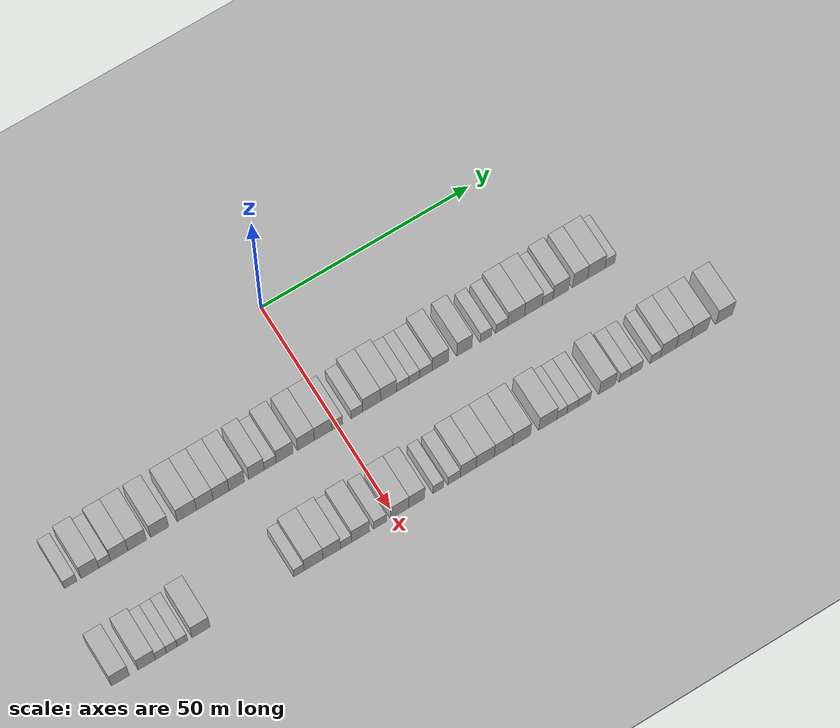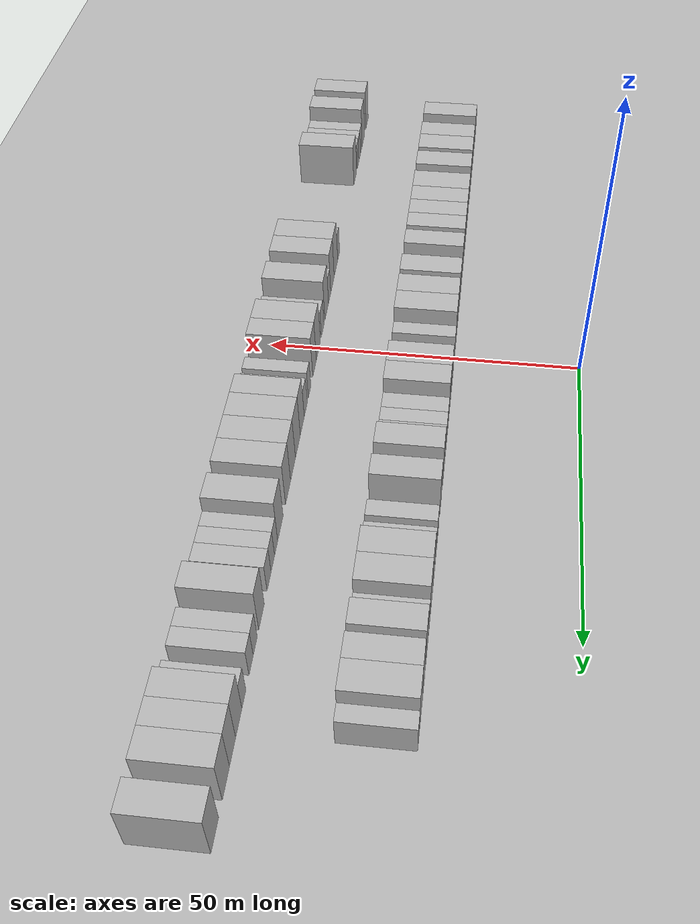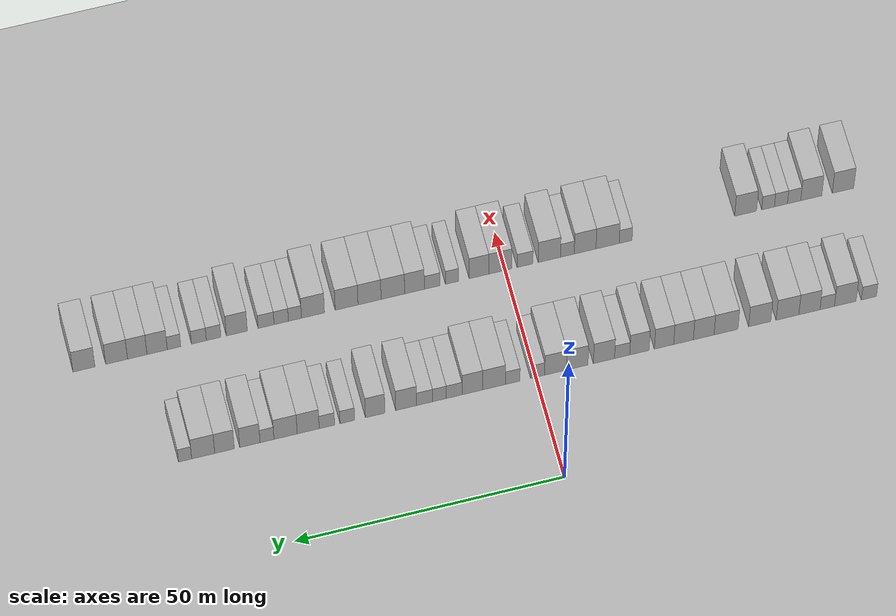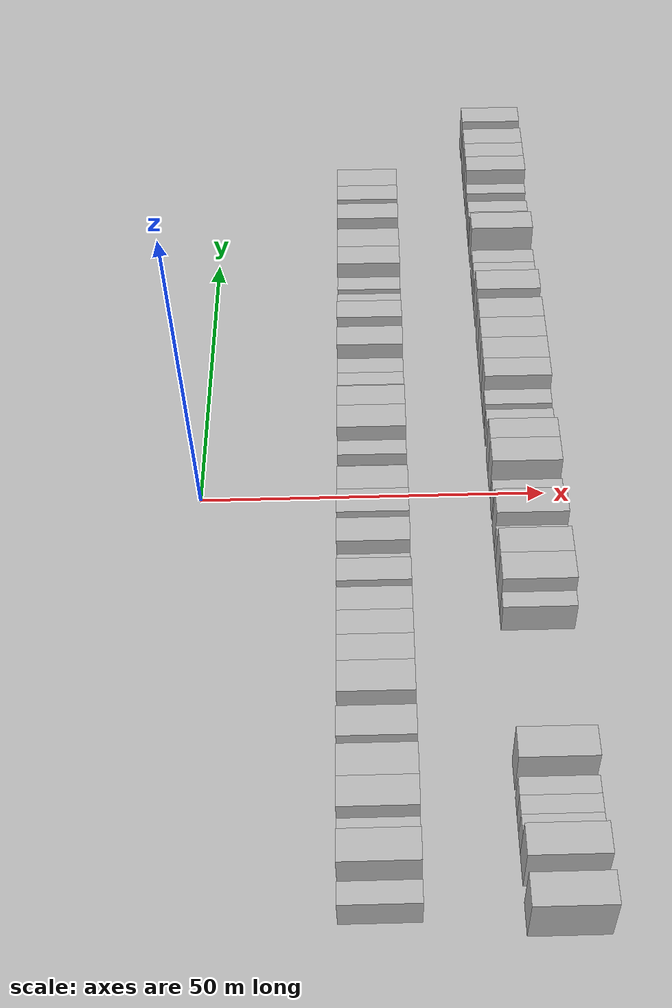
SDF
<sdf version="1.6">
 <world name="default">
  <include><name>ground_plane_1</name><uri>model://HANNAS_ground_plane</uri></include>
  <include>
   <name>ground_plane_2</name>
   <uri>model://HANNAS_ground_plane</uri>
   <pose>100 0 0  0 0 0</pose>
  </include>
  <model name="building_37">
   <static>1</static>
   <pose>25.0000 -62.4495 0 0.000000 0.000000 0.000000</pose>
   <link name="link">
    <pose>0 0 3.00 0 0 0</pose>
    <collision name="collision"><geometry><box><size>10.0000 2.8541 6.0000</size></box></geometry></collision>
    <visual name="visual">
     <cast_shadows>0</cast_shadows>
     <geometry><box><size>10.0000 2.8541 6.0000</size></box></geometry>
     <material>
      <script>
       <uri>model://HANNAS_wall/materials/scripts</uri>
       <uri>model://HANNAS_wall/materials/textures</uri>
       <name>vrc/HANNAS_wall</name>
      </script>
     </material>
    </visual>
   </link>
  </model>
  <model name="building_38">
   <static>1</static>
   <pose>25.0000 -57.9823 0 0.000000 0.000000 0.000000</pose>
   <link name="link">
    <pose>0 0 4.50 0 0 0</pose>
    <collision name="collision"><geometry><box><size>10.0000 4.0803 9.0000</size></box></geometry></collision>
    <visual name="visual">
     <cast_shadows>0</cast_shadows>
     <geometry><box><size>10.0000 4.0803 9.0000</size></box></geometry>
     <material>
      <script>
       <uri>model://HANNAS_wall/materials/scripts</uri>
       <uri>model://HANNAS_wall/materials/textures</uri>
       <name>vrc/HANNAS_wall</name>
      </script>
     </material>
    </visual>
   </link>
  </model>
  <model name="building_39">
   <static>1</static>
   <pose>25.0000 -54.5782 0 0.000000 0.000000 0.000000</pose>
   <link name="link">
    <pose>0 0 3.00 0 0 0</pose>
    <collision name="collision"><geometry><box><size>10.0000 2.7280 6.0000</size></box></geometry></collision>
    <visual name="visual">
     <cast_shadows>0</cast_shadows>
     <geometry><box><size>10.0000 2.7280 6.0000</size></box></geometry>
     <material>
      <script>
       <uri>model://HANNAS_wall/materials/scripts</uri>
       <uri>model://HANNAS_wall/materials/textures</uri>
       <name>vrc/HANNAS_wall</name>
      </script>
     </material>
    </visual>
   </link>
  </model>
  <model name="building_40">
   <static>1</static>
   <pose>25.0000 -51.2221 0 0.000000 0.000000 0.000000</pose>
   <link name="link">
    <pose>0 0 4.50 0 0 0</pose>
    <collision name="collision"><geometry><box><size>10.0000 3.9841 9.0000</size></box></geometry></collision>
    <visual name="visual">
     <cast_shadows>0</cast_shadows>
     <geometry><box><size>10.0000 3.9841 9.0000</size></box></geometry>
     <material>
      <script>
       <uri>model://HANNAS_wall/materials/scripts</uri>
       <uri>model://HANNAS_wall/materials/textures</uri>
       <name>vrc/HANNAS_wall</name>
      </script>
     </material>
    </visual>
   </link>
  </model>
  <model name="building_41">
   <static>1</static>
   <pose>25.0000 -47.0854 0 0.000000 0.000000 0.000000</pose>
   <link name="link">
    <pose>0 0 4.50 0 0 0</pose>
    <collision name="collision"><geometry><box><size>10.0000 4.2894 9.0000</size></box></geometry></collision>
    <visual name="visual">
     <cast_shadows>0</cast_shadows>
     <geometry><box><size>10.0000 4.2894 9.0000</size></box></geometry>
     <material>
      <script>
       <uri>model://HANNAS_wall/materials/scripts</uri>
       <uri>model://HANNAS_wall/materials/textures</uri>
       <name>vrc/HANNAS_wall</name>
      </script>
     </material>
    </visual>
   </link>
  </model>
  <model name="building_42">
   <static>1</static>
   <pose>25.0000 -41.8532 0 0.000000 0.000000 0.000000</pose>
   <link name="link">
    <pose>0 0 4.50 0 0 0</pose>
    <collision name="collision"><geometry><box><size>10.0000 4.1750 9.0000</size></box></geometry></collision>
    <visual name="visual">
     <cast_shadows>0</cast_shadows>
     <geometry><box><size>10.0000 4.1750 9.0000</size></box></geometry>
     <material>
      <script>
       <uri>model://HANNAS_wall/materials/scripts</uri>
       <uri>model://HANNAS_wall/materials/textures</uri>
       <name>vrc/HANNAS_wall</name>
      </script>
     </material>
    </visual>
   </link>
  </model>
  <model name="building_43">
   <static>1</static>
   <pose>25.0000 -35.5196 0 0.000000 0.000000 0.000000</pose>
   <link name="link">
    <pose>0 0 4.50 0 0 0</pose>
    <collision name="collision"><geometry><box><size>10.0000 4.4922 9.0000</size></box></geometry></collision>
    <visual name="visual">
     <cast_shadows>0</cast_shadows>
     <geometry><box><size>10.0000 4.4922 9.0000</size></box></geometry>
     <material>
      <script>
       <uri>model://HANNAS_wall/materials/scripts</uri>
       <uri>model://HANNAS_wall/materials/textures</uri>
       <name>vrc/HANNAS_wall</name>
      </script>
     </material>
    </visual>
   </link>
  </model>
  <model name="building_44">
   <static>1</static>
   <pose>25.0000 -31.3297 0 0.000000 0.000000 0.000000</pose>
   <link name="link">
    <pose>0 0 4.50 0 0 0</pose>
    <collision name="collision"><geometry><box><size>10.0000 3.8875 9.0000</size></box></geometry></collision>
    <visual name="visual">
     <cast_shadows>0</cast_shadows>
     <geometry><box><size>10.0000 3.8875 9.0000</size></box></geometry>
     <material>
      <script>
       <uri>model://HANNAS_wall/materials/scripts</uri>
       <uri>model://HANNAS_wall/materials/textures</uri>
       <name>vrc/HANNAS_wall</name>
      </script>
     </material>
    </visual>
   </link>
  </model>
  <model name="building_45">
   <static>1</static>
   <pose>25.0000 -27.5345 0 0.000000 0.000000 0.000000</pose>
   <link name="link">
    <pose>0 0 4.50 0 0 0</pose>
    <collision name="collision"><geometry><box><size>10.0000 3.7029 9.0000</size></box></geometry></collision>
    <visual name="visual">
     <cast_shadows>0</cast_shadows>
     <geometry><box><size>10.0000 3.7029 9.0000</size></box></geometry>
     <material>
      <script>
       <uri>model://HANNAS_wall/materials/scripts</uri>
       <uri>model://HANNAS_wall/materials/textures</uri>
       <name>vrc/HANNAS_wall</name>
      </script>
     </material>
    </visual>
   </link>
  </model>
  <model name="building_46">
   <static>1</static>
   <pose>25.0000 -23.8702 0 0.000000 0.000000 0.000000</pose>
   <link name="link">
    <pose>0 0 4.50 0 0 0</pose>
    <collision name="collision"><geometry><box><size>10.0000 3.6257 9.0000</size></box></geometry></collision>
    <visual name="visual">
     <cast_shadows>0</cast_shadows>
     <geometry><box><size>10.0000 3.6257 9.0000</size></box></geometry>
     <material>
      <script>
       <uri>model://HANNAS_wall/materials/scripts</uri>
       <uri>model://HANNAS_wall/materials/textures</uri>
       <name>vrc/HANNAS_wall</name>
      </script>
     </material>
    </visual>
   </link>
  </model>
  <model name="building_47">
   <static>1</static>
   <pose>25.0000 -19.2437 0 0.000000 0.000000 0.000000</pose>
   <link name="link">
    <pose>0 0 4.50 0 0 0</pose>
    <collision name="collision"><geometry><box><size>10.0000 3.6273 9.0000</size></box></geometry></collision>
    <visual name="visual">
     <cast_shadows>0</cast_shadows>
     <geometry><box><size>10.0000 3.6273 9.0000</size></box></geometry>
     <material>
      <script>
       <uri>model://HANNAS_wall/materials/scripts</uri>
       <uri>model://HANNAS_wall/materials/textures</uri>
       <name>vrc/HANNAS_wall</name>
      </script>
     </material>
    </visual>
   </link>
  </model>
  <model name="building_48">
   <static>1</static>
   <pose>25.0000 -16.0153 0 0.000000 0.000000 0.000000</pose>
   <link name="link">
    <pose>0 0 3.00 0 0 0</pose>
    <collision name="collision"><geometry><box><size>10.0000 2.8296 6.0000</size></box></geometry></collision>
    <visual name="visual">
     <cast_shadows>0</cast_shadows>
     <geometry><box><size>10.0000 2.8296 6.0000</size></box></geometry>
     <material>
      <script>
       <uri>model://HANNAS_wall/materials/scripts</uri>
       <uri>model://HANNAS_wall/materials/textures</uri>
       <name>vrc/HANNAS_wall</name>
      </script>
     </material>
    </visual>
   </link>
  </model>
  <model name="building_49">
   <static>1</static>
   <pose>25.0000 -12.6120 0 0.000000 0.000000 0.000000</pose>
   <link name="link">
    <pose>0 0 4.50 0 0 0</pose>
    <collision name="collision"><geometry><box><size>10.0000 3.9770 9.0000</size></box></geometry></collision>
    <visual name="visual">
     <cast_shadows>0</cast_shadows>
     <geometry><box><size>10.0000 3.9770 9.0000</size></box></geometry>
     <material>
      <script>
       <uri>model://HANNAS_wall/materials/scripts</uri>
       <uri>model://HANNAS_wall/materials/textures</uri>
       <name>vrc/HANNAS_wall</name>
      </script>
     </material>
    </visual>
   </link>
  </model>
  <model name="building_50">
   <static>1</static>
   <pose>25.0000 -7.6137 0 0.000000 0.000000 0.000000</pose>
   <link name="link">
    <pose>0 0 4.50 0 0 0</pose>
    <collision name="collision"><geometry><box><size>10.0000 4.0196 9.0000</size></box></geometry></collision>
    <visual name="visual">
     <cast_shadows>0</cast_shadows>
     <geometry><box><size>10.0000 4.0196 9.0000</size></box></geometry>
     <material>
      <script>
       <uri>model://HANNAS_wall/materials/scripts</uri>
       <uri>model://HANNAS_wall/materials/textures</uri>
       <name>vrc/HANNAS_wall</name>
      </script>
     </material>
    </visual>
   </link>
  </model>
  <model name="building_51">
   <static>1</static>
   <pose>25.0000 -3.5496 0 0.000000 0.000000 0.000000</pose>
   <link name="link">
    <pose>0 0 4.50 0 0 0</pose>
    <collision name="collision"><geometry><box><size>10.0000 4.1087 9.0000</size></box></geometry></collision>
    <visual name="visual">
     <cast_shadows>0</cast_shadows>
     <geometry><box><size>10.0000 4.1087 9.0000</size></box></geometry>
     <material>
      <script>
       <uri>model://HANNAS_wall/materials/scripts</uri>
       <uri>model://HANNAS_wall/materials/textures</uri>
       <name>vrc/HANNAS_wall</name>
      </script>
     </material>
    </visual>
   </link>
  </model>
  <model name="building_52">
   <static>1</static>
   <pose>25.0000 -0.1980 0 0.000000 0.000000 0.000000</pose>
   <link name="link">
    <pose>0 0 3.00 0 0 0</pose>
    <collision name="collision"><geometry><box><size>10.0000 2.5946 6.0000</size></box></geometry></collision>
    <visual name="visual">
     <cast_shadows>0</cast_shadows>
     <geometry><box><size>10.0000 2.5946 6.0000</size></box></geometry>
     <material>
      <script>
       <uri>model://HANNAS_wall/materials/scripts</uri>
       <uri>model://HANNAS_wall/materials/textures</uri>
       <name>vrc/HANNAS_wall</name>
      </script>
     </material>
    </visual>
   </link>
  </model>
  <model name="building_53">
   <static>1</static>
   <pose>25.0000 4.4550 0 0.000000 0.000000 0.000000</pose>
   <link name="link">
    <pose>0 0 3.00 0 0 0</pose>
    <collision name="collision"><geometry><box><size>10.0000 2.7113 6.0000</size></box></geometry></collision>
    <visual name="visual">
     <cast_shadows>0</cast_shadows>
     <geometry><box><size>10.0000 2.7113 6.0000</size></box></geometry>
     <material>
      <script>
       <uri>model://HANNAS_wall/materials/scripts</uri>
       <uri>model://HANNAS_wall/materials/textures</uri>
       <name>vrc/HANNAS_wall</name>
      </script>
     </material>
    </visual>
   </link>
  </model>
  <model name="building_54">
   <static>1</static>
   <pose>25.0000 7.9434 0 0.000000 0.000000 0.000000</pose>
   <link name="link">
    <pose>0 0 4.50 0 0 0</pose>
    <collision name="collision"><geometry><box><size>10.0000 4.2656 9.0000</size></box></geometry></collision>
    <visual name="visual">
     <cast_shadows>0</cast_shadows>
     <geometry><box><size>10.0000 4.2656 9.0000</size></box></geometry>
     <material>
      <script>
       <uri>model://HANNAS_wall/materials/scripts</uri>
       <uri>model://HANNAS_wall/materials/textures</uri>
       <name>vrc/HANNAS_wall</name>
      </script>
     </material>
    </visual>
   </link>
  </model>
  <model name="building_55">
   <static>1</static>
   <pose>25.0000 11.9884 0 0.000000 0.000000 0.000000</pose>
   <link name="link">
    <pose>0 0 4.50 0 0 0</pose>
    <collision name="collision"><geometry><box><size>10.0000 3.8243 9.0000</size></box></geometry></collision>
    <visual name="visual">
     <cast_shadows>0</cast_shadows>
     <geometry><box><size>10.0000 3.8243 9.0000</size></box></geometry>
     <material>
      <script>
       <uri>model://HANNAS_wall/materials/scripts</uri>
       <uri>model://HANNAS_wall/materials/textures</uri>
       <name>vrc/HANNAS_wall</name>
      </script>
     </material>
    </visual>
   </link>
  </model>
  <model name="building_56">
   <static>1</static>
   <pose>25.0000 15.3651 0 0.000000 0.000000 0.000000</pose>
   <link name="link">
    <pose>0 0 3.00 0 0 0</pose>
    <collision name="collision"><geometry><box><size>10.0000 2.9291 6.0000</size></box></geometry></collision>
    <visual name="visual">
     <cast_shadows>0</cast_shadows>
     <geometry><box><size>10.0000 2.9291 6.0000</size></box></geometry>
     <material>
      <script>
       <uri>model://HANNAS_wall/materials/scripts</uri>
       <uri>model://HANNAS_wall/materials/textures</uri>
       <name>vrc/HANNAS_wall</name>
      </script>
     </material>
    </visual>
   </link>
  </model>
  <model name="building_57">
   <static>1</static>
   <pose>25.0000 18.0941 0 0.000000 0.000000 0.000000</pose>
   <link name="link">
    <pose>0 0 3.00 0 0 0</pose>
    <collision name="collision"><geometry><box><size>10.0000 2.5289 6.0000</size></box></geometry></collision>
    <visual name="visual">
     <cast_shadows>0</cast_shadows>
     <geometry><box><size>10.0000 2.5289 6.0000</size></box></geometry>
     <material>
      <script>
       <uri>model://HANNAS_wall/materials/scripts</uri>
       <uri>model://HANNAS_wall/materials/textures</uri>
       <name>vrc/HANNAS_wall</name>
      </script>
     </material>
    </visual>
   </link>
  </model>
  <model name="building_58">
   <static>1</static>
   <pose>25.0000 20.8509 0 0.000000 0.000000 0.000000</pose>
   <link name="link">
    <pose>0 0 3.00 0 0 0</pose>
    <collision name="collision"><geometry><box><size>10.0000 2.9846 6.0000</size></box></geometry></collision>
    <visual name="visual">
     <cast_shadows>0</cast_shadows>
     <geometry><box><size>10.0000 2.9846 6.0000</size></box></geometry>
     <material>
      <script>
       <uri>model://HANNAS_wall/materials/scripts</uri>
       <uri>model://HANNAS_wall/materials/textures</uri>
       <name>vrc/HANNAS_wall</name>
      </script>
     </material>
    </visual>
   </link>
  </model>
  <model name="building_59">
   <static>1</static>
   <pose>25.0000 24.2949 0 0.000000 0.000000 0.000000</pose>
   <link name="link">
    <pose>0 0 4.50 0 0 0</pose>
    <collision name="collision"><geometry><box><size>10.0000 3.9034 9.0000</size></box></geometry></collision>
    <visual name="visual">
     <cast_shadows>0</cast_shadows>
     <geometry><box><size>10.0000 3.9034 9.0000</size></box></geometry>
     <material>
      <script>
       <uri>model://HANNAS_wall/materials/scripts</uri>
       <uri>model://HANNAS_wall/materials/textures</uri>
       <name>vrc/HANNAS_wall</name>
      </script>
     </material>
    </visual>
   </link>
  </model>
  <model name="building_60">
   <static>1</static>
   <pose>25.0000 30.0627 0 0.000000 0.000000 0.000000</pose>
   <link name="link">
    <pose>0 0 4.50 0 0 0</pose>
    <collision name="collision"><geometry><box><size>10.0000 3.6321 9.0000</size></box></geometry></collision>
    <visual name="visual">
     <cast_shadows>0</cast_shadows>
     <geometry><box><size>10.0000 3.6321 9.0000</size></box></geometry>
     <material>
      <script>
       <uri>model://HANNAS_wall/materials/scripts</uri>
       <uri>model://HANNAS_wall/materials/textures</uri>
       <name>vrc/HANNAS_wall</name>
      </script>
     </material>
    </visual>
   </link>
  </model>
  <model name="building_61">
   <static>1</static>
   <pose>25.0000 35.2333 0 0.000000 0.000000 0.000000</pose>
   <link name="link">
    <pose>0 0 3.00 0 0 0</pose>
    <collision name="collision"><geometry><box><size>10.0000 2.7091 6.0000</size></box></geometry></collision>
    <visual name="visual">
     <cast_shadows>0</cast_shadows>
     <geometry><box><size>10.0000 2.7091 6.0000</size></box></geometry>
     <material>
      <script>
       <uri>model://HANNAS_wall/materials/scripts</uri>
       <uri>model://HANNAS_wall/materials/textures</uri>
       <name>vrc/HANNAS_wall</name>
      </script>
     </material>
    </visual>
   </link>
  </model>
  <model name="building_62">
   <static>1</static>
   <pose>25.0000 39.0193 0 0.000000 0.000000 0.000000</pose>
   <link name="link">
    <pose>0 0 3.00 0 0 0</pose>
    <collision name="collision"><geometry><box><size>10.0000 2.8630 6.0000</size></box></geometry></collision>
    <visual name="visual">
     <cast_shadows>0</cast_shadows>
     <geometry><box><size>10.0000 2.8630 6.0000</size></box></geometry>
     <material>
      <script>
       <uri>model://HANNAS_wall/materials/scripts</uri>
       <uri>model://HANNAS_wall/materials/textures</uri>
       <name>vrc/HANNAS_wall</name>
      </script>
     </material>
    </visual>
   </link>
  </model>
  <model name="building_63">
   <static>1</static>
   <pose>25.0000 42.4953 0 0.000000 0.000000 0.000000</pose>
   <link name="link">
    <pose>0 0 4.50 0 0 0</pose>
    <collision name="collision"><geometry><box><size>10.0000 4.0889 9.0000</size></box></geometry></collision>
    <visual name="visual">
     <cast_shadows>0</cast_shadows>
     <geometry><box><size>10.0000 4.0889 9.0000</size></box></geometry>
     <material>
      <script>
       <uri>model://HANNAS_wall/materials/scripts</uri>
       <uri>model://HANNAS_wall/materials/textures</uri>
       <name>vrc/HANNAS_wall</name>
      </script>
     </material>
    </visual>
   </link>
  </model>
  <model name="building_64">
   <static>1</static>
   <pose>25.0000 46.6849 0 0.000000 0.000000 0.000000</pose>
   <link name="link">
    <pose>0 0 4.50 0 0 0</pose>
    <collision name="collision"><geometry><box><size>10.0000 4.2902 9.0000</size></box></geometry></collision>
    <visual name="visual">
     <cast_shadows>0</cast_shadows>
     <geometry><box><size>10.0000 4.2902 9.0000</size></box></geometry>
     <material>
      <script>
       <uri>model://HANNAS_wall/materials/scripts</uri>
       <uri>model://HANNAS_wall/materials/textures</uri>
       <name>vrc/HANNAS_wall</name>
      </script>
     </material>
    </visual>
   </link>
  </model>
  <model name="building_65">
   <static>1</static>
   <pose>25.0000 50.1178 0 0.000000 0.000000 0.000000</pose>
   <link name="link">
    <pose>0 0 3.00 0 0 0</pose>
    <collision name="collision"><geometry><box><size>10.0000 2.5756 6.0000</size></box></geometry></collision>
    <visual name="visual">
     <cast_shadows>0</cast_shadows>
     <geometry><box><size>10.0000 2.5756 6.0000</size></box></geometry>
     <material>
      <script>
       <uri>model://HANNAS_wall/materials/scripts</uri>
       <uri>model://HANNAS_wall/materials/textures</uri>
       <name>vrc/HANNAS_wall</name>
      </script>
     </material>
    </visual>
   </link>
  </model>
  <model name="building_66">
   <static>1</static>
   <pose>25.0000 53.2876 0 0.000000 0.000000 0.000000</pose>
   <link name="link">
    <pose>0 0 4.50 0 0 0</pose>
    <collision name="collision"><geometry><box><size>10.0000 3.7640 9.0000</size></box></geometry></collision>
    <visual name="visual">
     <cast_shadows>0</cast_shadows>
     <geometry><box><size>10.0000 3.7640 9.0000</size></box></geometry>
     <material>
      <script>
       <uri>model://HANNAS_wall/materials/scripts</uri>
       <uri>model://HANNAS_wall/materials/textures</uri>
       <name>vrc/HANNAS_wall</name>
      </script>
     </material>
    </visual>
   </link>
  </model>
  <model name="building_67">
   <static>1</static>
   <pose>25.0000 57.9793 0 0.000000 0.000000 0.000000</pose>
   <link name="link">
    <pose>0 0 4.50 0 0 0</pose>
    <collision name="collision"><geometry><box><size>10.0000 3.6194 9.0000</size></box></geometry></collision>
    <visual name="visual">
     <cast_shadows>0</cast_shadows>
     <geometry><box><size>10.0000 3.6194 9.0000</size></box></geometry>
     <material>
      <script>
       <uri>model://HANNAS_wall/materials/scripts</uri>
       <uri>model://HANNAS_wall/materials/textures</uri>
       <name>vrc/HANNAS_wall</name>
      </script>
     </material>
    </visual>
   </link>
  </model>
  <model name="building_68">
   <static>1</static>
   <pose>25.0000 61.9194 0 0.000000 0.000000 0.000000</pose>
   <link name="link">
    <pose>0 0 4.50 0 0 0</pose>
    <collision name="collision"><geometry><box><size>10.0000 4.2608 9.0000</size></box></geometry></collision>
    <visual name="visual">
     <cast_shadows>0</cast_shadows>
     <geometry><box><size>10.0000 4.2608 9.0000</size></box></geometry>
     <material>
      <script>
       <uri>model://HANNAS_wall/materials/scripts</uri>
       <uri>model://HANNAS_wall/materials/textures</uri>
       <name>vrc/HANNAS_wall</name>
      </script>
     </material>
    </visual>
   </link>
  </model>
  <model name="building_69">
   <static>1</static>
   <pose>25.0000 65.2648 0 0.000000 0.000000 0.000000</pose>
   <link name="link">
    <pose>0 0 3.00 0 0 0</pose>
    <collision name="collision"><geometry><box><size>10.0000 2.4299 6.0000</size></box></geometry></collision>
    <visual name="visual">
     <cast_shadows>0</cast_shadows>
     <geometry><box><size>10.0000 2.4299 6.0000</size></box></geometry>
     <material>
      <script>
       <uri>model://HANNAS_wall/materials/scripts</uri>
       <uri>model://HANNAS_wall/materials/textures</uri>
       <name>vrc/HANNAS_wall</name>
      </script>
     </material>
    </visual>
   </link>
  </model>
  <model name="building_132">
   <static>1</static>
   <pose>47.0000 -63.8549 0 0.000000 0.000000 0.000000</pose>
   <link name="link">
    <pose>0 0 4.50 0 0 0</pose>
    <collision name="collision"><geometry><box><size>10.0000 4.0748 9.0000</size></box></geometry></collision>
    <visual name="visual">
     <cast_shadows>0</cast_shadows>
     <geometry><box><size>10.0000 4.0748 9.0000</size></box></geometry>
     <material>
      <script>
       <uri>model://HANNAS_wall/materials/scripts</uri>
       <uri>model://HANNAS_wall/materials/textures</uri>
       <name>vrc/HANNAS_wall</name>
      </script>
     </material>
    </visual>
   </link>
  </model>
  <model name="building_133">
   <static>1</static>
   <pose>47.0000 -57.8229 0 0.000000 0.000000 0.000000</pose>
   <link name="link">
    <pose>0 0 4.50 0 0 0</pose>
    <collision name="collision"><geometry><box><size>10.0000 3.9893 9.0000</size></box></geometry></collision>
    <visual name="visual">
     <cast_shadows>0</cast_shadows>
     <geometry><box><size>10.0000 3.9893 9.0000</size></box></geometry>
     <material>
      <script>
       <uri>model://HANNAS_wall/materials/scripts</uri>
       <uri>model://HANNAS_wall/materials/textures</uri>
       <name>vrc/HANNAS_wall</name>
      </script>
     </material>
    </visual>
   </link>
  </model>
  <model name="building_134">
   <static>1</static>
   <pose>47.0000 -54.5615 0 0.000000 0.000000 0.000000</pose>
   <link name="link">
    <pose>0 0 3.00 0 0 0</pose>
    <collision name="collision"><geometry><box><size>10.0000 2.5335 6.0000</size></box></geometry></collision>
    <visual name="visual">
     <cast_shadows>0</cast_shadows>
     <geometry><box><size>10.0000 2.5335 6.0000</size></box></geometry>
     <material>
      <script>
       <uri>model://HANNAS_wall/materials/scripts</uri>
       <uri>model://HANNAS_wall/materials/textures</uri>
       <name>vrc/HANNAS_wall</name>
      </script>
     </material>
    </visual>
   </link>
  </model>
  <model name="building_135">
   <static>1</static>
   <pose>47.0000 -52.0638 0 0.000000 0.000000 0.000000</pose>
   <link name="link">
    <pose>0 0 3.00 0 0 0</pose>
    <collision name="collision"><geometry><box><size>10.0000 2.4620 6.0000</size></box></geometry></collision>
    <visual name="visual">
     <cast_shadows>0</cast_shadows>
     <geometry><box><size>10.0000 2.4620 6.0000</size></box></geometry>
     <material>
      <script>
       <uri>model://HANNAS_wall/materials/scripts</uri>
       <uri>model://HANNAS_wall/materials/textures</uri>
       <name>vrc/HANNAS_wall</name>
      </script>
     </material>
    </visual>
   </link>
  </model>
  <model name="building_136">
   <static>1</static>
   <pose>47.0000 -49.6235 0 0.000000 0.000000 0.000000</pose>
   <link name="link">
    <pose>0 0 3.00 0 0 0</pose>
    <collision name="collision"><geometry><box><size>10.0000 2.4187 6.0000</size></box></geometry></collision>
    <visual name="visual">
     <cast_shadows>0</cast_shadows>
     <geometry><box><size>10.0000 2.4187 6.0000</size></box></geometry>
     <material>
      <script>
       <uri>model://HANNAS_wall/materials/scripts</uri>
       <uri>model://HANNAS_wall/materials/textures</uri>
       <name>vrc/HANNAS_wall</name>
      </script>
     </material>
    </visual>
   </link>
  </model>
  <model name="building_137">
   <static>1</static>
   <pose>47.0000 -45.3385 0 0.000000 0.000000 0.000000</pose>
   <link name="link">
    <pose>0 0 4.50 0 0 0</pose>
    <collision name="collision"><geometry><box><size>10.0000 4.1514 9.0000</size></box></geometry></collision>
    <visual name="visual">
     <cast_shadows>0</cast_shadows>
     <geometry><box><size>10.0000 4.1514 9.0000</size></box></geometry>
     <material>
      <script>
       <uri>model://HANNAS_wall/materials/scripts</uri>
       <uri>model://HANNAS_wall/materials/textures</uri>
       <name>vrc/HANNAS_wall</name>
      </script>
     </material>
    </visual>
   </link>
  </model>
  <model name="building_138">
   <static>1</static>
   <pose>47.0000 -22.6207 0 0.000000 0.000000 0.000000</pose>
   <link name="link">
    <pose>0 0 3.00 0 0 0</pose>
    <collision name="collision"><geometry><box><size>10.0000 2.4281 6.0000</size></box></geometry></collision>
    <visual name="visual">
     <cast_shadows>0</cast_shadows>
     <geometry><box><size>10.0000 2.4281 6.0000</size></box></geometry>
     <material>
      <script>
       <uri>model://HANNAS_wall/materials/scripts</uri>
       <uri>model://HANNAS_wall/materials/textures</uri>
       <name>vrc/HANNAS_wall</name>
      </script>
     </material>
    </visual>
   </link>
  </model>
  <model name="building_139">
   <static>1</static>
   <pose>47.0000 -19.2145 0 0.000000 0.000000 0.000000</pose>
   <link name="link">
    <pose>0 0 4.50 0 0 0</pose>
    <collision name="collision"><geometry><box><size>10.0000 4.3842 9.0000</size></box></geometry></collision>
    <visual name="visual">
     <cast_shadows>0</cast_shadows>
     <geometry><box><size>10.0000 4.3842 9.0000</size></box></geometry>
     <material>
      <script>
       <uri>model://HANNAS_wall/materials/scripts</uri>
       <uri>model://HANNAS_wall/materials/textures</uri>
       <name>vrc/HANNAS_wall</name>
      </script>
     </material>
    </visual>
   </link>
  </model>
  <model name="building_140">
   <static>1</static>
   <pose>47.0000 -14.9723 0 0.000000 0.000000 0.000000</pose>
   <link name="link">
    <pose>0 0 4.50 0 0 0</pose>
    <collision name="collision"><geometry><box><size>10.0000 4.1002 9.0000</size></box></geometry></collision>
    <visual name="visual">
     <cast_shadows>0</cast_shadows>
     <geometry><box><size>10.0000 4.1002 9.0000</size></box></geometry>
     <material>
      <script>
       <uri>model://HANNAS_wall/materials/scripts</uri>
       <uri>model://HANNAS_wall/materials/textures</uri>
       <name>vrc/HANNAS_wall</name>
      </script>
     </material>
    </visual>
   </link>
  </model>
  <model name="building_141">
   <static>1</static>
   <pose>47.0000 -11.6211 0 0.000000 0.000000 0.000000</pose>
   <link name="link">
    <pose>0 0 3.00 0 0 0</pose>
    <collision name="collision"><geometry><box><size>10.0000 2.6022 6.0000</size></box></geometry></collision>
    <visual name="visual">
     <cast_shadows>0</cast_shadows>
     <geometry><box><size>10.0000 2.6022 6.0000</size></box></geometry>
     <material>
      <script>
       <uri>model://HANNAS_wall/materials/scripts</uri>
       <uri>model://HANNAS_wall/materials/textures</uri>
       <name>vrc/HANNAS_wall</name>
      </script>
     </material>
    </visual>
   </link>
  </model>
  <model name="building_142">
   <static>1</static>
   <pose>47.0000 -8.2234 0 0.000000 0.000000 0.000000</pose>
   <link name="link">
    <pose>0 0 4.50 0 0 0</pose>
    <collision name="collision"><geometry><box><size>10.0000 4.1932 9.0000</size></box></geometry></collision>
    <visual name="visual">
     <cast_shadows>0</cast_shadows>
     <geometry><box><size>10.0000 4.1932 9.0000</size></box></geometry>
     <material>
      <script>
       <uri>model://HANNAS_wall/materials/scripts</uri>
       <uri>model://HANNAS_wall/materials/textures</uri>
       <name>vrc/HANNAS_wall</name>
      </script>
     </material>
    </visual>
   </link>
  </model>
  <model name="building_143">
   <static>1</static>
   <pose>47.0000 -3.6331 0 0.000000 0.000000 0.000000</pose>
   <link name="link">
    <pose>0 0 3.00 0 0 0</pose>
    <collision name="collision"><geometry><box><size>10.0000 2.9874 6.0000</size></box></geometry></collision>
    <visual name="visual">
     <cast_shadows>0</cast_shadows>
     <geometry><box><size>10.0000 2.9874 6.0000</size></box></geometry>
     <material>
      <script>
       <uri>model://HANNAS_wall/materials/scripts</uri>
       <uri>model://HANNAS_wall/materials/textures</uri>
       <name>vrc/HANNAS_wall</name>
      </script>
     </material>
    </visual>
   </link>
  </model>
  <model name="building_144">
   <static>1</static>
   <pose>47.0000 1.0215 0 0.000000 0.000000 0.000000</pose>
   <link name="link">
    <pose>0 0 4.50 0 0 0</pose>
    <collision name="collision"><geometry><box><size>10.0000 4.3219 9.0000</size></box></geometry></collision>
    <visual name="visual">
     <cast_shadows>0</cast_shadows>
     <geometry><box><size>10.0000 4.3219 9.0000</size></box></geometry>
     <material>
      <script>
       <uri>model://HANNAS_wall/materials/scripts</uri>
       <uri>model://HANNAS_wall/materials/textures</uri>
       <name>vrc/HANNAS_wall</name>
      </script>
     </material>
    </visual>
   </link>
  </model>
  <model name="building_145">
   <static>1</static>
   <pose>47.0000 5.0186 0 0.000000 0.000000 0.000000</pose>
   <link name="link">
    <pose>0 0 4.50 0 0 0</pose>
    <collision name="collision"><geometry><box><size>10.0000 3.6721 9.0000</size></box></geometry></collision>
    <visual name="visual">
     <cast_shadows>0</cast_shadows>
     <geometry><box><size>10.0000 3.6721 9.0000</size></box></geometry>
     <material>
      <script>
       <uri>model://HANNAS_wall/materials/scripts</uri>
       <uri>model://HANNAS_wall/materials/textures</uri>
       <name>vrc/HANNAS_wall</name>
      </script>
     </material>
    </visual>
   </link>
  </model>
  <model name="building_146">
   <static>1</static>
   <pose>47.0000 10.0903 0 0.000000 0.000000 0.000000</pose>
   <link name="link">
    <pose>0 0 3.00 0 0 0</pose>
    <collision name="collision"><geometry><box><size>10.0000 2.4713 6.0000</size></box></geometry></collision>
    <visual name="visual">
     <cast_shadows>0</cast_shadows>
     <geometry><box><size>10.0000 2.4713 6.0000</size></box></geometry>
     <material>
      <script>
       <uri>model://HANNAS_wall/materials/scripts</uri>
       <uri>model://HANNAS_wall/materials/textures</uri>
       <name>vrc/HANNAS_wall</name>
      </script>
     </material>
    </visual>
   </link>
  </model>
  <model name="building_147">
   <static>1</static>
   <pose>47.0000 13.8059 0 0.000000 0.000000 0.000000</pose>
   <link name="link">
    <pose>0 0 3.00 0 0 0</pose>
    <collision name="collision"><geometry><box><size>10.0000 2.9600 6.0000</size></box></geometry></collision>
    <visual name="visual">
     <cast_shadows>0</cast_shadows>
     <geometry><box><size>10.0000 2.9600 6.0000</size></box></geometry>
     <material>
      <script>
       <uri>model://HANNAS_wall/materials/scripts</uri>
       <uri>model://HANNAS_wall/materials/textures</uri>
       <name>vrc/HANNAS_wall</name>
      </script>
     </material>
    </visual>
   </link>
  </model>
  <model name="building_148">
   <static>1</static>
   <pose>47.0000 17.1363 0 0.000000 0.000000 0.000000</pose>
   <link name="link">
    <pose>0 0 4.50 0 0 0</pose>
    <collision name="collision"><geometry><box><size>10.0000 3.7008 9.0000</size></box></geometry></collision>
    <visual name="visual">
     <cast_shadows>0</cast_shadows>
     <geometry><box><size>10.0000 3.7008 9.0000</size></box></geometry>
     <material>
      <script>
       <uri>model://HANNAS_wall/materials/scripts</uri>
       <uri>model://HANNAS_wall/materials/textures</uri>
       <name>vrc/HANNAS_wall</name>
      </script>
     </material>
    </visual>
   </link>
  </model>
  <model name="building_149">
   <static>1</static>
   <pose>47.0000 21.1923 0 0.000000 0.000000 0.000000</pose>
   <link name="link">
    <pose>0 0 4.50 0 0 0</pose>
    <collision name="collision"><geometry><box><size>10.0000 4.4111 9.0000</size></box></geometry></collision>
    <visual name="visual">
     <cast_shadows>0</cast_shadows>
     <geometry><box><size>10.0000 4.4111 9.0000</size></box></geometry>
     <material>
      <script>
       <uri>model://HANNAS_wall/materials/scripts</uri>
       <uri>model://HANNAS_wall/materials/textures</uri>
       <name>vrc/HANNAS_wall</name>
      </script>
     </material>
    </visual>
   </link>
  </model>
  <model name="building_150">
   <static>1</static>
   <pose>47.0000 25.5608 0 0.000000 0.000000 0.000000</pose>
   <link name="link">
    <pose>0 0 4.50 0 0 0</pose>
    <collision name="collision"><geometry><box><size>10.0000 4.3260 9.0000</size></box></geometry></collision>
    <visual name="visual">
     <cast_shadows>0</cast_shadows>
     <geometry><box><size>10.0000 4.3260 9.0000</size></box></geometry>
     <material>
      <script>
       <uri>model://HANNAS_wall/materials/scripts</uri>
       <uri>model://HANNAS_wall/materials/textures</uri>
       <name>vrc/HANNAS_wall</name>
      </script>
     </material>
    </visual>
   </link>
  </model>
  <model name="building_151">
   <static>1</static>
   <pose>47.0000 29.8571 0 0.000000 0.000000 0.000000</pose>
   <link name="link">
    <pose>0 0 4.50 0 0 0</pose>
    <collision name="collision"><geometry><box><size>10.0000 4.2666 9.0000</size></box></geometry></collision>
    <visual name="visual">
     <cast_shadows>0</cast_shadows>
     <geometry><box><size>10.0000 4.2666 9.0000</size></box></geometry>
     <material>
      <script>
       <uri>model://HANNAS_wall/materials/scripts</uri>
       <uri>model://HANNAS_wall/materials/textures</uri>
       <name>vrc/HANNAS_wall</name>
      </script>
     </material>
    </visual>
   </link>
  </model>
  <model name="building_152">
   <static>1</static>
   <pose>47.0000 36.1417 0 0.000000 0.000000 0.000000</pose>
   <link name="link">
    <pose>0 0 4.50 0 0 0</pose>
    <collision name="collision"><geometry><box><size>10.0000 4.3026 9.0000</size></box></geometry></collision>
    <visual name="visual">
     <cast_shadows>0</cast_shadows>
     <geometry><box><size>10.0000 4.3026 9.0000</size></box></geometry>
     <material>
      <script>
       <uri>model://HANNAS_wall/materials/scripts</uri>
       <uri>model://HANNAS_wall/materials/textures</uri>
       <name>vrc/HANNAS_wall</name>
      </script>
     </material>
    </visual>
   </link>
  </model>
  <model name="building_153">
   <static>1</static>
   <pose>47.0000 39.5117 0 0.000000 0.000000 0.000000</pose>
   <link name="link">
    <pose>0 0 3.00 0 0 0</pose>
    <collision name="collision"><geometry><box><size>10.0000 2.4375 6.0000</size></box></geometry></collision>
    <visual name="visual">
     <cast_shadows>0</cast_shadows>
     <geometry><box><size>10.0000 2.4375 6.0000</size></box></geometry>
     <material>
      <script>
       <uri>model://HANNAS_wall/materials/scripts</uri>
       <uri>model://HANNAS_wall/materials/textures</uri>
       <name>vrc/HANNAS_wall</name>
      </script>
     </material>
    </visual>
   </link>
  </model>
  <model name="building_154">
   <static>1</static>
   <pose>47.0000 42.0755 0 0.000000 0.000000 0.000000</pose>
   <link name="link">
    <pose>0 0 3.00 0 0 0</pose>
    <collision name="collision"><geometry><box><size>10.0000 2.6901 6.0000</size></box></geometry></collision>
    <visual name="visual">
     <cast_shadows>0</cast_shadows>
     <geometry><box><size>10.0000 2.6901 6.0000</size></box></geometry>
     <material>
      <script>
       <uri>model://HANNAS_wall/materials/scripts</uri>
       <uri>model://HANNAS_wall/materials/textures</uri>
       <name>vrc/HANNAS_wall</name>
      </script>
     </material>
    </visual>
   </link>
  </model>
  <model name="building_155">
   <static>1</static>
   <pose>47.0000 44.9112 0 0.000000 0.000000 0.000000</pose>
   <link name="link">
    <pose>0 0 3.00 0 0 0</pose>
    <collision name="collision"><geometry><box><size>10.0000 2.9812 6.0000</size></box></geometry></collision>
    <visual name="visual">
     <cast_shadows>0</cast_shadows>
     <geometry><box><size>10.0000 2.9812 6.0000</size></box></geometry>
     <material>
      <script>
       <uri>model://HANNAS_wall/materials/scripts</uri>
       <uri>model://HANNAS_wall/materials/textures</uri>
       <name>vrc/HANNAS_wall</name>
      </script>
     </material>
    </visual>
   </link>
  </model>
  <model name="building_156">
   <static>1</static>
   <pose>47.0000 50.3616 0 0.000000 0.000000 0.000000</pose>
   <link name="link">
    <pose>0 0 4.50 0 0 0</pose>
    <collision name="collision"><geometry><box><size>10.0000 3.9195 9.0000</size></box></geometry></collision>
    <visual name="visual">
     <cast_shadows>0</cast_shadows>
     <geometry><box><size>10.0000 3.9195 9.0000</size></box></geometry>
     <material>
      <script>
       <uri>model://HANNAS_wall/materials/scripts</uri>
       <uri>model://HANNAS_wall/materials/textures</uri>
       <name>vrc/HANNAS_wall</name>
      </script>
     </material>
    </visual>
   </link>
  </model>
  <model name="building_157">
   <static>1</static>
   <pose>47.0000 54.6800 0 0.000000 0.000000 0.000000</pose>
   <link name="link">
    <pose>0 0 3.00 0 0 0</pose>
    <collision name="collision"><geometry><box><size>10.0000 2.7173 6.0000</size></box></geometry></collision>
    <visual name="visual">
     <cast_shadows>0</cast_shadows>
     <geometry><box><size>10.0000 2.7173 6.0000</size></box></geometry>
     <material>
      <script>
       <uri>model://HANNAS_wall/materials/scripts</uri>
       <uri>model://HANNAS_wall/materials/textures</uri>
       <name>vrc/HANNAS_wall</name>
      </script>
     </material>
    </visual>
   </link>
  </model>
  <model name="building_158">
   <static>1</static>
   <pose>47.0000 57.4222 0 0.000000 0.000000 0.000000</pose>
   <link name="link">
    <pose>0 0 3.00 0 0 0</pose>
    <collision name="collision"><geometry><box><size>10.0000 2.7670 6.0000</size></box></geometry></collision>
    <visual name="visual">
     <cast_shadows>0</cast_shadows>
     <geometry><box><size>10.0000 2.7670 6.0000</size></box></geometry>
     <material>
      <script>
       <uri>model://HANNAS_wall/materials/scripts</uri>
       <uri>model://HANNAS_wall/materials/textures</uri>
       <name>vrc/HANNAS_wall</name>
      </script>
     </material>
    </visual>
   </link>
  </model>
  <model name="building_159">
   <static>1</static>
   <pose>47.0000 62.0600 0 0.000000 0.000000 0.000000</pose>
   <link name="link">
    <pose>0 0 3.00 0 0 0</pose>
    <collision name="collision"><geometry><box><size>10.0000 2.5088 6.0000</size></box></geometry></collision>
    <visual name="visual">
     <cast_shadows>0</cast_shadows>
     <geometry><box><size>10.0000 2.5088 6.0000</size></box></geometry>
     <material>
      <script>
       <uri>model://HANNAS_wall/materials/scripts</uri>
       <uri>model://HANNAS_wall/materials/textures</uri>
       <name>vrc/HANNAS_wall</name>
      </script>
     </material>
    </visual>
   </link>
  </model>
  <model name="building_160">
   <static>1</static>
   <pose>47.0000 65.2015 0 0.000000 0.000000 0.000000</pose>
   <link name="link">
    <pose>0 0 4.50 0 0 0</pose>
    <collision name="collision"><geometry><box><size>10.0000 3.7741 9.0000</size></box></geometry></collision>
    <visual name="visual">
     <cast_shadows>0</cast_shadows>
     <geometry><box><size>10.0000 3.7741 9.0000</size></box></geometry>
     <material>
      <script>
       <uri>model://HANNAS_wall/materials/scripts</uri>
       <uri>model://HANNAS_wall/materials/textures</uri>
       <name>vrc/HANNAS_wall</name>
      </script>
     </material>
    </visual>
   </link>
  </model>
  <model name="building_161">
   <static>1</static>
   <pose>47.0000 68.8946 0 0.000000 0.000000 0.000000</pose>
   <link name="link">
    <pose>0 0 4.50 0 0 0</pose>
    <collision name="collision"><geometry><box><size>10.0000 3.6121 9.0000</size></box></geometry></collision>
    <visual name="visual">
     <cast_shadows>0</cast_shadows>
     <geometry><box><size>10.0000 3.6121 9.0000</size></box></geometry>
     <material>
      <script>
       <uri>model://HANNAS_wall/materials/scripts</uri>
       <uri>model://HANNAS_wall/materials/textures</uri>
       <name>vrc/HANNAS_wall</name>
      </script>
     </material>
    </visual>
   </link>
  </model>
  <model name="building_162">
   <static>1</static>
   <pose>47.0000 72.7314 0 0.000000 0.000000 0.000000</pose>
   <link name="link">
    <pose>0 0 4.50 0 0 0</pose>
    <collision name="collision"><geometry><box><size>10.0000 4.0615 9.0000</size></box></geometry></collision>
    <visual name="visual">
     <cast_shadows>0</cast_shadows>
     <geometry><box><size>10.0000 4.0615 9.0000</size></box></geometry>
     <material>
      <script>
       <uri>model://HANNAS_wall/materials/scripts</uri>
       <uri>model://HANNAS_wall/materials/textures</uri>
       <name>vrc/HANNAS_wall</name>
      </script>
     </material>
    </visual>
   </link>
  </model>
  <model name="building_163">
   <static>1</static>
   <pose>47.0000 78.7960 0 0.000000 0.000000 0.000000</pose>
   <link name="link">
    <pose>0 0 4.50 0 0 0</pose>
    <collision name="collision"><geometry><box><size>10.0000 4.0677 9.0000</size></box></geometry></collision>
    <visual name="visual">
     <cast_shadows>0</cast_shadows>
     <geometry><box><size>10.0000 4.0677 9.0000</size></box></geometry>
     <material>
      <script>
       <uri>model://HANNAS_wall/materials/scripts</uri>
       <uri>model://HANNAS_wall/materials/textures</uri>
       <name>vrc/HANNAS_wall</name>
      </script>
     </material>
    </visual>
   </link>
  </model>
 </world>
</sdf>
